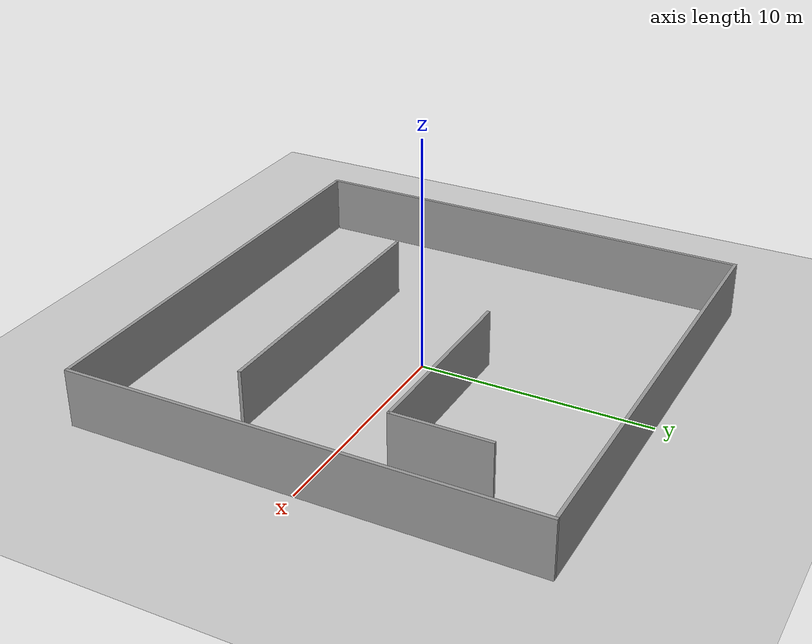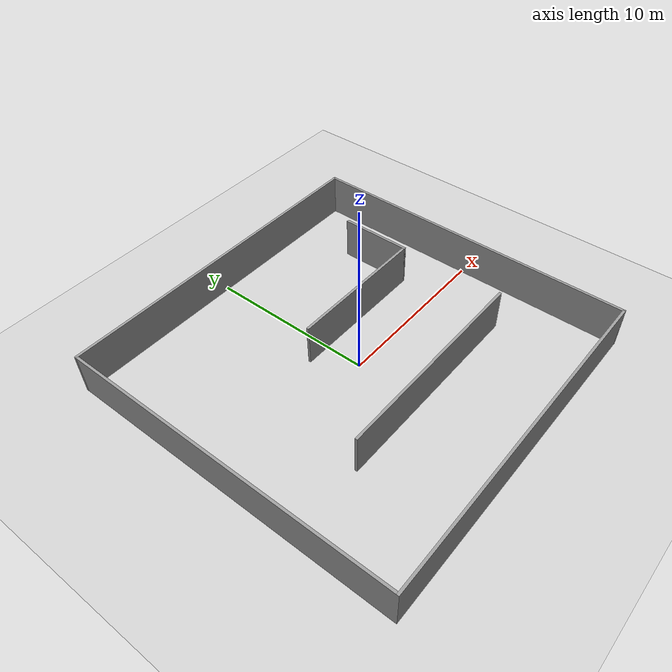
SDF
<sdf version="1.6">
 <world name="default">
  <light name="sun" type="directional">
   <pose>0 0 10 0 -0 0</pose>
   <diffuse>0.8 0.8 0.8 1</diffuse>
   <specular>0.2 0.2 0.2 1</specular>
   <attenuation>
    <range>1000</range>
    <constant>0.9</constant>
    <linear>0.01</linear>
    <quadratic>0.001</quadratic>
   </attenuation>
   <direction>-0.5 0.1 -0.9</direction>
  </light>
  <model name="ground_plane">
   <static>1</static>
   <link name="link">
    <collision name="collision">
     <geometry><plane><normal>0 0 1</normal><size>100 100</size></plane></geometry>
     <surface>
      <contact><collide_bitmask>65535</collide_bitmask></contact>
      <friction><ode><mu>100</mu><mu2>50</mu2></ode></friction>
     </surface>
    </collision>
    <visual name="visual">
     <cast_shadows>0</cast_shadows>
     <geometry><plane><normal>0 0 1</normal><size>100 100</size></plane></geometry>
     <material>
      <script><uri>file://media/materials/scripts/gazebo.material</uri><name>Gazebo/Grey</name></script>
     </material>
    </visual>
   </link>
  </model>
  <gravity>0 0 -9.8</gravity>
  <magnetic_field>6e-06 2.3e-05 -4.2e-05</magnetic_field>
  <atmosphere type="adiabatic"/>
  <physics name="default_physics" default="0" type="ode">
   <max_step_size>0.001</max_step_size>
   <real_time_factor>1</real_time_factor>
   <real_time_update_rate>1000</real_time_update_rate>
  </physics>
  <scene><ambient>0.4 0.4 0.4 1</ambient><background>0.7 0.7 0.7 1</background><shadows>1</shadows></scene>
  <audio><device>default</device></audio>
  <spherical_coordinates>
   <surface_model>EARTH_WGS84</surface_model>
   <latitude_deg>0</latitude_deg>
   <longitude_deg>0</longitude_deg>
   <elevation>0</elevation>
   <heading_deg>0</heading_deg>
  </spherical_coordinates>
  <model name="phuongnho_map01">
   <pose>-0.026896 0.041758 0 0 -0 0</pose>
   <link name="Wall_28">
    <collision name="Wall_28_Collision">
     <geometry><box><size>20.1085 0.15 2.5</size></box></geometry>
     <pose>0 0 1.25 0 -0 0</pose>
    </collision>
    <visual name="Wall_28_Visual">
     <pose>0 0 1.25 0 -0 0</pose>
     <geometry><box><size>20.1085 0.15 2.5</size></box></geometry>
     <material>
      <script><uri>file://media/materials/scripts/gazebo.material</uri><name>Gazebo/Grey</name></script>
      <ambient>1 1 1 1</ambient>
     </material>
     <meta><layer>0</layer></meta>
    </visual>
    <pose>-0.035379 -9.925 0 0 -0 0</pose>
   </link>
   <link name="Wall_29">
    <collision name="Wall_29_Collision">
     <geometry><box><size>20 0.15 2.5</size></box></geometry>
     <pose>0 0 1.25 0 -0 0</pose>
    </collision>
    <visual name="Wall_29_Visual">
     <pose>0 0 1.25 0 -0 0</pose>
     <geometry><box><size>20 0.15 2.5</size></box></geometry>
     <material>
      <script><uri>file://media/materials/scripts/gazebo.material</uri><name>Gazebo/Grey</name></script>
      <ambient>1 1 1 1</ambient>
     </material>
     <meta><layer>0</layer></meta>
    </visual>
    <pose>10.0146 0 0 0 -0 1.5708</pose>
   </link>
   <link name="Wall_30">
    <collision name="Wall_30_Collision">
     <geometry><box><size>20.1085 0.15 2.5</size></box></geometry>
     <pose>0 0 1.25 0 -0 0</pose>
    </collision>
    <visual name="Wall_30_Visual">
     <pose>0 0 1.25 0 -0 0</pose>
     <geometry><box><size>20.1085 0.15 2.5</size></box></geometry>
     <material>
      <script><uri>file://media/materials/scripts/gazebo.material</uri><name>Gazebo/Grey</name></script>
      <ambient>1 1 1 1</ambient>
     </material>
     <meta><layer>0</layer></meta>
    </visual>
    <pose>-0.035379 9.925 0 0 -0 3.14159</pose>
   </link>
   <link name="Wall_31">
    <collision name="Wall_31_Collision">
     <geometry><box><size>20 0.15 2.5</size></box></geometry>
     <pose>0 0 1.25 0 -0 0</pose>
    </collision>
    <visual name="Wall_31_Visual">
     <pose>0 0 1.25 0 -0 0</pose>
     <geometry><box><size>20 0.15 2.5</size></box></geometry>
     <material>
      <script><uri>file://media/materials/scripts/gazebo.material</uri><name>Gazebo/Grey</name></script>
      <ambient>1 1 1 1</ambient>
     </material>
     <meta><layer>0</layer></meta>
    </visual>
    <pose>-10.0146 0 0 0 -0 -1.5708</pose>
   </link>
   <link name="Wall_36">
    <collision name="Wall_36_Collision">
     <geometry><box><size>12.5 0.15 2.5</size></box></geometry>
     <pose>0 0 1.25 0 -0 0</pose>
    </collision>
    <visual name="Wall_36_Visual">
     <pose>0 0 1.25 0 -0 0</pose>
     <geometry><box><size>12.5 0.15 2.5</size></box></geometry>
     <material>
      <script><uri>file://media/materials/scripts/gazebo.material</uri><name>Gazebo/Grey</name></script>
      <ambient>1 1 1 1</ambient>
     </material>
     <meta><layer>0</layer></meta>
    </visual>
    <pose>0.922547 -4.08849 0 0 -0 0</pose>
   </link>
   <link name="Wall_39">
    <collision name="Wall_39_Collision">
     <geometry><box><size>8.5 0.15 2.5</size></box></geometry>
     <pose>0 0 1.25 0 -0 0</pose>
    </collision>
    <visual name="Wall_39_Visual">
     <pose>0 0 1.25 0 -0 0</pose>
     <geometry><box><size>8.5 0.15 2.5</size></box></geometry>
     <material>
      <script><uri>file://media/materials/scripts/gazebo.material</uri><name>Gazebo/Grey</name></script>
      <ambient>1 1 1 1</ambient>
     </material>
     <meta><layer>0</layer></meta>
    </visual>
    <pose>2.86033 2.24888 0 0 -0 0</pose>
   </link>
   <link name="Wall_40">
    <collision name="Wall_40_Collision">
     <geometry><box><size>4.25 0.15 2.5</size></box></geometry>
     <pose>0 0 1.25 0 -0 0</pose>
    </collision>
    <visual name="Wall_40_Visual">
     <pose>0 0 1.25 0 -0 0</pose>
     <geometry><box><size>4.25 0.15 2.5</size></box></geometry>
     <material>
      <script><uri>file://media/materials/scripts/gazebo.material</uri><name>Gazebo/Grey</name></script>
      <ambient>1 1 1 1</ambient>
     </material>
     <meta><layer>0</layer></meta>
    </visual>
    <pose>7.03533 4.29888 0 0 -0 1.5708</pose>
   </link>
   <static>1</static>
  </model>
 </world>
</sdf>
